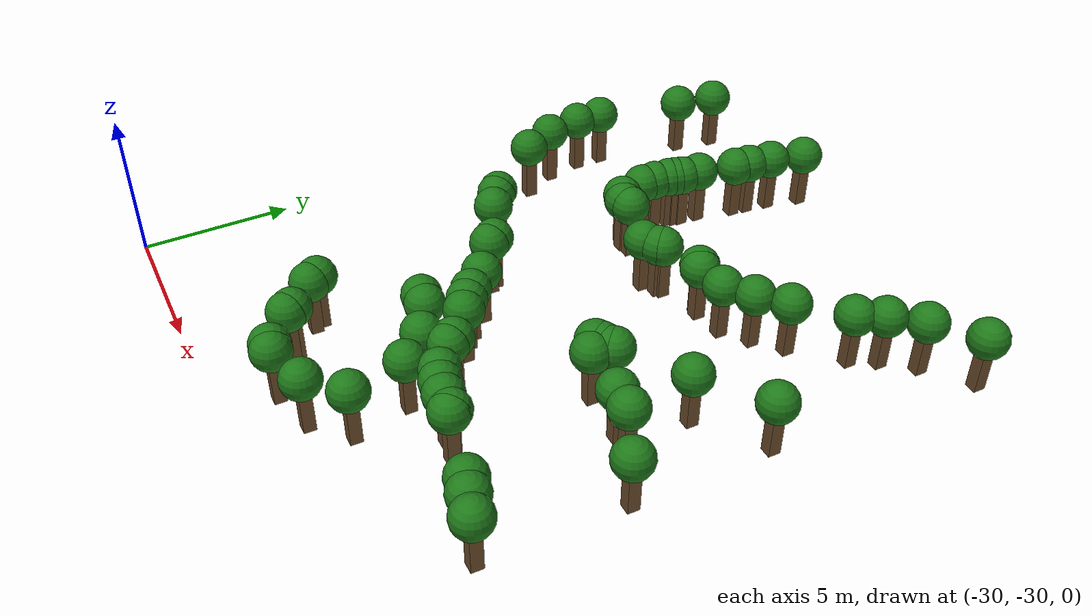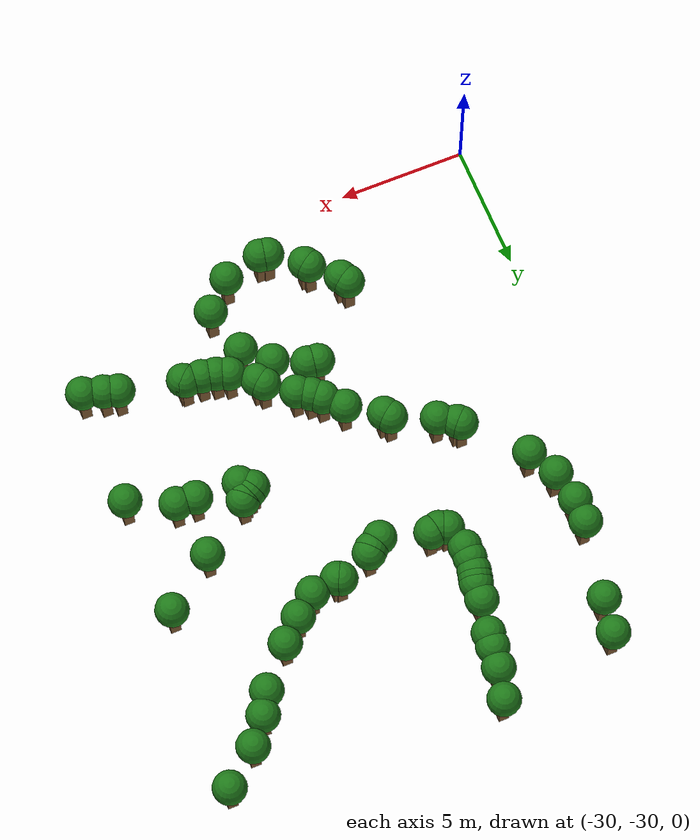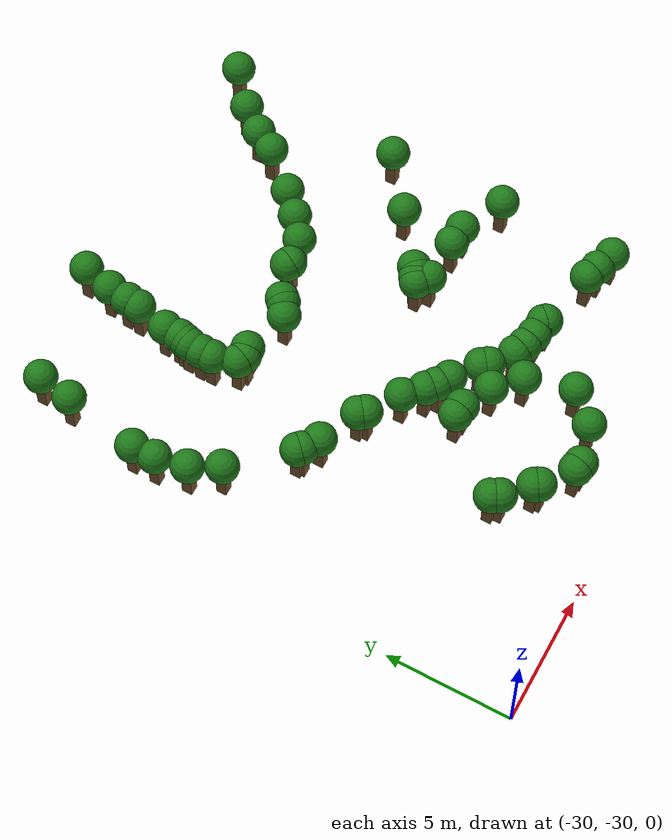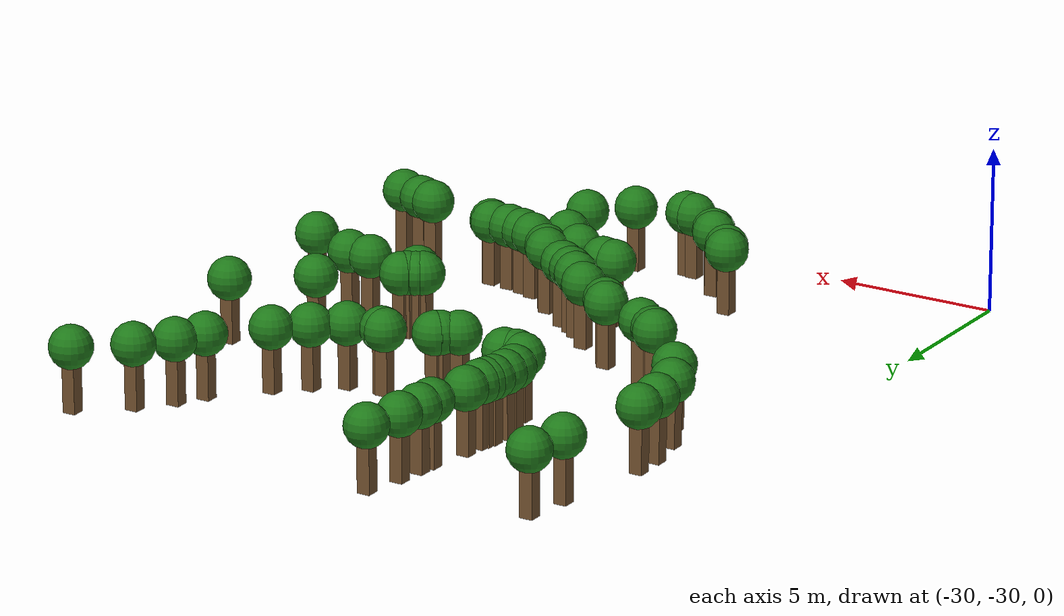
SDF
<sdf version="1.8">
 <model name="bush_trail_nav_walls">
  <static>true</static>
  <link name="trail_wall_305">
   <pose>-22.375 -8.299 0.750 0 0 0</pose>
   <collision name="c"><geometry><box><size>0.400 0.400 1.500</size></box></geometry></collision>
   <visual name="v">
    <geometry><box><size>0.400 0.400 1.500</size></box></geometry>
    <material><ambient>0.35 0.25 0.15 1</ambient><diffuse>0.45 0.32 0.18 1</diffuse></material>
   </visual>
   <visual name="leaves">
    <pose>0 0 1.200 0 0 0</pose>
    <geometry><sphere><radius>0.650</radius></sphere></geometry>
    <material><ambient>0.08 0.35 0.08 1</ambient><diffuse>0.12 0.48 0.10 1</diffuse></material>
   </visual>
  </link>
  <link name="trail_wall_313">
   <pose>-11.994 -9.003 0.750 0 0 0</pose>
   <collision name="c"><geometry><box><size>0.400 0.400 1.500</size></box></geometry></collision>
   <visual name="v">
    <geometry><box><size>0.400 0.400 1.500</size></box></geometry>
    <material><ambient>0.35 0.25 0.15 1</ambient><diffuse>0.45 0.32 0.18 1</diffuse></material>
   </visual>
   <visual name="leaves">
    <pose>0 0 1.200 0 0 0</pose>
    <geometry><sphere><radius>0.650</radius></sphere></geometry>
    <material><ambient>0.08 0.35 0.08 1</ambient><diffuse>0.12 0.48 0.10 1</diffuse></material>
   </visual>
  </link>
  <link name="trail_wall_314">
   <pose>-27.067 -9.120 0.750 0 0 0</pose>
   <collision name="c"><geometry><box><size>0.400 0.400 1.500</size></box></geometry></collision>
   <visual name="v">
    <geometry><box><size>0.400 0.400 1.500</size></box></geometry>
    <material><ambient>0.35 0.25 0.15 1</ambient><diffuse>0.45 0.32 0.18 1</diffuse></material>
   </visual>
   <visual name="leaves">
    <pose>0 0 1.200 0 0 0</pose>
    <geometry><sphere><radius>0.650</radius></sphere></geometry>
    <material><ambient>0.08 0.35 0.08 1</ambient><diffuse>0.12 0.48 0.10 1</diffuse></material>
   </visual>
  </link>
  <link name="trail_wall_317">
   <pose>-22.669 -9.472 0.750 0 0 0</pose>
   <collision name="c"><geometry><box><size>0.400 0.400 1.500</size></box></geometry></collision>
   <visual name="v">
    <geometry><box><size>0.400 0.400 1.500</size></box></geometry>
    <material><ambient>0.35 0.25 0.15 1</ambient><diffuse>0.45 0.32 0.18 1</diffuse></material>
   </visual>
   <visual name="leaves">
    <pose>0 0 1.200 0 0 0</pose>
    <geometry><sphere><radius>0.650</radius></sphere></geometry>
    <material><ambient>0.08 0.35 0.08 1</ambient><diffuse>0.12 0.48 0.10 1</diffuse></material>
   </visual>
  </link>
  <link name="trail_wall_321">
   <pose>-13.343 -10.117 0.750 0 0 0</pose>
   <collision name="c"><geometry><box><size>0.400 0.400 1.500</size></box></geometry></collision>
   <visual name="v">
    <geometry><box><size>0.400 0.400 1.500</size></box></geometry>
    <material><ambient>0.35 0.25 0.15 1</ambient><diffuse>0.45 0.32 0.18 1</diffuse></material>
   </visual>
   <visual name="leaves">
    <pose>0 0 1.200 0 0 0</pose>
    <geometry><sphere><radius>0.650</radius></sphere></geometry>
    <material><ambient>0.08 0.35 0.08 1</ambient><diffuse>0.12 0.48 0.10 1</diffuse></material>
   </visual>
  </link>
  <link name="trail_wall_322">
   <pose>-22.786 -10.293 0.750 0 0 0</pose>
   <collision name="c"><geometry><box><size>0.400 0.400 1.500</size></box></geometry></collision>
   <visual name="v">
    <geometry><box><size>0.400 0.400 1.500</size></box></geometry>
    <material><ambient>0.35 0.25 0.15 1</ambient><diffuse>0.45 0.32 0.18 1</diffuse></material>
   </visual>
   <visual name="leaves">
    <pose>0 0 1.200 0 0 0</pose>
    <geometry><sphere><radius>0.650</radius></sphere></geometry>
    <material><ambient>0.08 0.35 0.08 1</ambient><diffuse>0.12 0.48 0.10 1</diffuse></material>
   </visual>
  </link>
  <link name="trail_wall_323">
   <pose>-27.302 -10.469 0.750 0 0 0</pose>
   <collision name="c"><geometry><box><size>0.400 0.400 1.500</size></box></geometry></collision>
   <visual name="v">
    <geometry><box><size>0.400 0.400 1.500</size></box></geometry>
    <material><ambient>0.35 0.25 0.15 1</ambient><diffuse>0.45 0.32 0.18 1</diffuse></material>
   </visual>
   <visual name="leaves">
    <pose>0 0 1.200 0 0 0</pose>
    <geometry><sphere><radius>0.650</radius></sphere></geometry>
    <material><ambient>0.08 0.35 0.08 1</ambient><diffuse>0.12 0.48 0.10 1</diffuse></material>
   </visual>
  </link>
  <link name="trail_wall_326">
   <pose>-22.845 -10.821 0.750 0 0 0</pose>
   <collision name="c"><geometry><box><size>0.400 0.400 1.500</size></box></geometry></collision>
   <visual name="v">
    <geometry><box><size>0.400 0.400 1.500</size></box></geometry>
    <material><ambient>0.35 0.25 0.15 1</ambient><diffuse>0.45 0.32 0.18 1</diffuse></material>
   </visual>
   <visual name="leaves">
    <pose>0 0 1.200 0 0 0</pose>
    <geometry><sphere><radius>0.650</radius></sphere></geometry>
    <material><ambient>0.08 0.35 0.08 1</ambient><diffuse>0.12 0.48 0.10 1</diffuse></material>
   </visual>
  </link>
  <link name="trail_wall_329">
   <pose>-14.106 -11.056 0.750 0 0 0</pose>
   <collision name="c"><geometry><box><size>0.400 0.400 1.500</size></box></geometry></collision>
   <visual name="v">
    <geometry><box><size>0.400 0.400 1.500</size></box></geometry>
    <material><ambient>0.35 0.25 0.15 1</ambient><diffuse>0.45 0.32 0.18 1</diffuse></material>
   </visual>
   <visual name="leaves">
    <pose>0 0 1.200 0 0 0</pose>
    <geometry><sphere><radius>0.650</radius></sphere></geometry>
    <material><ambient>0.08 0.35 0.08 1</ambient><diffuse>0.12 0.48 0.10 1</diffuse></material>
   </visual>
  </link>
  <link name="trail_wall_338">
   <pose>-14.575 -11.877 0.750 0 0 0</pose>
   <collision name="c"><geometry><box><size>0.400 0.400 1.500</size></box></geometry></collision>
   <visual name="v">
    <geometry><box><size>0.400 0.400 1.500</size></box></geometry>
    <material><ambient>0.35 0.25 0.15 1</ambient><diffuse>0.45 0.32 0.18 1</diffuse></material>
   </visual>
   <visual name="leaves">
    <pose>0 0 1.200 0 0 0</pose>
    <geometry><sphere><radius>0.650</radius></sphere></geometry>
    <material><ambient>0.08 0.35 0.08 1</ambient><diffuse>0.12 0.48 0.10 1</diffuse></material>
   </visual>
  </link>
  <link name="trail_wall_340">
   <pose>-23.138 -12.111 0.750 0 0 0</pose>
   <collision name="c"><geometry><box><size>0.400 0.400 1.500</size></box></geometry></collision>
   <visual name="v">
    <geometry><box><size>0.400 0.400 1.500</size></box></geometry>
    <material><ambient>0.35 0.25 0.15 1</ambient><diffuse>0.45 0.32 0.18 1</diffuse></material>
   </visual>
   <visual name="leaves">
    <pose>0 0 1.200 0 0 0</pose>
    <geometry><sphere><radius>0.650</radius></sphere></geometry>
    <material><ambient>0.08 0.35 0.08 1</ambient><diffuse>0.12 0.48 0.10 1</diffuse></material>
   </visual>
  </link>
  <link name="trail_wall_348">
   <pose>-23.196 -12.757 0.750 0 0 0</pose>
   <collision name="c"><geometry><box><size>0.400 0.400 1.500</size></box></geometry></collision>
   <visual name="v">
    <geometry><box><size>0.400 0.400 1.500</size></box></geometry>
    <material><ambient>0.35 0.25 0.15 1</ambient><diffuse>0.45 0.32 0.18 1</diffuse></material>
   </visual>
   <visual name="leaves">
    <pose>0 0 1.200 0 0 0</pose>
    <geometry><sphere><radius>0.650</radius></sphere></geometry>
    <material><ambient>0.08 0.35 0.08 1</ambient><diffuse>0.12 0.48 0.10 1</diffuse></material>
   </visual>
  </link>
  <link name="trail_wall_351">
   <pose>-23.255 -12.991 0.750 0 0 0</pose>
   <collision name="c"><geometry><box><size>0.400 0.400 1.500</size></box></geometry></collision>
   <visual name="v">
    <geometry><box><size>0.400 0.400 1.500</size></box></geometry>
    <material><ambient>0.35 0.25 0.15 1</ambient><diffuse>0.45 0.32 0.18 1</diffuse></material>
   </visual>
   <visual name="leaves">
    <pose>0 0 1.200 0 0 0</pose>
    <geometry><sphere><radius>0.650</radius></sphere></geometry>
    <material><ambient>0.08 0.35 0.08 1</ambient><diffuse>0.12 0.48 0.10 1</diffuse></material>
   </visual>
  </link>
  <link name="trail_wall_354">
   <pose>-23.314 -13.226 0.750 0 0 0</pose>
   <collision name="c"><geometry><box><size>0.400 0.400 1.500</size></box></geometry></collision>
   <visual name="v">
    <geometry><box><size>0.400 0.400 1.500</size></box></geometry>
    <material><ambient>0.35 0.25 0.15 1</ambient><diffuse>0.45 0.32 0.18 1</diffuse></material>
   </visual>
   <visual name="leaves">
    <pose>0 0 1.200 0 0 0</pose>
    <geometry><sphere><radius>0.650</radius></sphere></geometry>
    <material><ambient>0.08 0.35 0.08 1</ambient><diffuse>0.12 0.48 0.10 1</diffuse></material>
   </visual>
  </link>
  <link name="trail_wall_355">
   <pose>-15.865 -13.284 0.750 0 0 0</pose>
   <collision name="c"><geometry><box><size>0.400 0.400 1.500</size></box></geometry></collision>
   <visual name="v">
    <geometry><box><size>0.400 0.400 1.500</size></box></geometry>
    <material><ambient>0.35 0.25 0.15 1</ambient><diffuse>0.45 0.32 0.18 1</diffuse></material>
   </visual>
   <visual name="leaves">
    <pose>0 0 1.200 0 0 0</pose>
    <geometry><sphere><radius>0.650</radius></sphere></geometry>
    <material><ambient>0.08 0.35 0.08 1</ambient><diffuse>0.12 0.48 0.10 1</diffuse></material>
   </visual>
  </link>
  <link name="trail_wall_358">
   <pose>-27.889 -13.460 0.750 0 0 0</pose>
   <collision name="c"><geometry><box><size>0.400 0.400 1.500</size></box></geometry></collision>
   <visual name="v">
    <geometry><box><size>0.400 0.400 1.500</size></box></geometry>
    <material><ambient>0.35 0.25 0.15 1</ambient><diffuse>0.45 0.32 0.18 1</diffuse></material>
   </visual>
   <visual name="leaves">
    <pose>0 0 1.200 0 0 0</pose>
    <geometry><sphere><radius>0.650</radius></sphere></geometry>
    <material><ambient>0.08 0.35 0.08 1</ambient><diffuse>0.12 0.48 0.10 1</diffuse></material>
   </visual>
  </link>
  <link name="trail_wall_360">
   <pose>-23.372 -13.754 0.750 0 0 0</pose>
   <collision name="c"><geometry><box><size>0.400 0.400 1.500</size></box></geometry></collision>
   <visual name="v">
    <geometry><box><size>0.400 0.400 1.500</size></box></geometry>
    <material><ambient>0.35 0.25 0.15 1</ambient><diffuse>0.45 0.32 0.18 1</diffuse></material>
   </visual>
   <visual name="leaves">
    <pose>0 0 1.200 0 0 0</pose>
    <geometry><sphere><radius>0.650</radius></sphere></geometry>
    <material><ambient>0.08 0.35 0.08 1</ambient><diffuse>0.12 0.48 0.10 1</diffuse></material>
   </visual>
  </link>
  <link name="trail_wall_362">
   <pose>-16.686 -14.047 0.750 0 0 0</pose>
   <collision name="c"><geometry><box><size>0.400 0.400 1.500</size></box></geometry></collision>
   <visual name="v">
    <geometry><box><size>0.400 0.400 1.500</size></box></geometry>
    <material><ambient>0.35 0.25 0.15 1</ambient><diffuse>0.45 0.32 0.18 1</diffuse></material>
   </visual>
   <visual name="leaves">
    <pose>0 0 1.200 0 0 0</pose>
    <geometry><sphere><radius>0.650</radius></sphere></geometry>
    <material><ambient>0.08 0.35 0.08 1</ambient><diffuse>0.12 0.48 0.10 1</diffuse></material>
   </visual>
  </link>
  <link name="trail_wall_363">
   <pose>-23.372 -14.223 0.750 0 0 0</pose>
   <collision name="c"><geometry><box><size>0.400 0.400 1.500</size></box></geometry></collision>
   <visual name="v">
    <geometry><box><size>0.400 0.400 1.500</size></box></geometry>
    <material><ambient>0.35 0.25 0.15 1</ambient><diffuse>0.45 0.32 0.18 1</diffuse></material>
   </visual>
   <visual name="leaves">
    <pose>0 0 1.200 0 0 0</pose>
    <geometry><sphere><radius>0.650</radius></sphere></geometry>
    <material><ambient>0.08 0.35 0.08 1</ambient><diffuse>0.12 0.48 0.10 1</diffuse></material>
   </visual>
  </link>
  <link name="trail_wall_364">
   <pose>-27.889 -14.399 0.750 0 0 0</pose>
   <collision name="c"><geometry><box><size>0.400 0.400 1.500</size></box></geometry></collision>
   <visual name="v">
    <geometry><box><size>0.400 0.400 1.500</size></box></geometry>
    <material><ambient>0.35 0.25 0.15 1</ambient><diffuse>0.45 0.32 0.18 1</diffuse></material>
   </visual>
   <visual name="leaves">
    <pose>0 0 1.200 0 0 0</pose>
    <geometry><sphere><radius>0.650</radius></sphere></geometry>
    <material><ambient>0.08 0.35 0.08 1</ambient><diffuse>0.12 0.48 0.10 1</diffuse></material>
   </visual>
  </link>
  <link name="trail_wall_366">
   <pose>-17.507 -14.692 0.750 0 0 0</pose>
   <collision name="c"><geometry><box><size>0.400 0.400 1.500</size></box></geometry></collision>
   <visual name="v">
    <geometry><box><size>0.400 0.400 1.500</size></box></geometry>
    <material><ambient>0.35 0.25 0.15 1</ambient><diffuse>0.45 0.32 0.18 1</diffuse></material>
   </visual>
   <visual name="leaves">
    <pose>0 0 1.200 0 0 0</pose>
    <geometry><sphere><radius>0.650</radius></sphere></geometry>
    <material><ambient>0.08 0.35 0.08 1</ambient><diffuse>0.12 0.48 0.10 1</diffuse></material>
   </visual>
  </link>
  <link name="trail_wall_367">
   <pose>-18.680 -14.809 0.750 0 0 0</pose>
   <collision name="c"><geometry><box><size>0.400 0.400 1.500</size></box></geometry></collision>
   <visual name="v">
    <geometry><box><size>0.400 0.400 1.500</size></box></geometry>
    <material><ambient>0.35 0.25 0.15 1</ambient><diffuse>0.45 0.32 0.18 1</diffuse></material>
   </visual>
   <visual name="leaves">
    <pose>0 0 1.200 0 0 0</pose>
    <geometry><sphere><radius>0.650</radius></sphere></geometry>
    <material><ambient>0.08 0.35 0.08 1</ambient><diffuse>0.12 0.48 0.10 1</diffuse></material>
   </visual>
  </link>
  <link name="trail_wall_368">
   <pose>-18.563 -14.868 0.750 0 0 0</pose>
   <collision name="c"><geometry><box><size>0.400 0.400 1.500</size></box></geometry></collision>
   <visual name="v">
    <geometry><box><size>0.400 0.400 1.500</size></box></geometry>
    <material><ambient>0.35 0.25 0.15 1</ambient><diffuse>0.45 0.32 0.18 1</diffuse></material>
   </visual>
   <visual name="leaves">
    <pose>0 0 1.200 0 0 0</pose>
    <geometry><sphere><radius>0.650</radius></sphere></geometry>
    <material><ambient>0.08 0.35 0.08 1</ambient><diffuse>0.12 0.48 0.10 1</diffuse></material>
   </visual>
  </link>
  <link name="trail_wall_371">
   <pose>-23.079 -15.161 0.750 0 0 0</pose>
   <collision name="c"><geometry><box><size>0.400 0.400 1.500</size></box></geometry></collision>
   <visual name="v">
    <geometry><box><size>0.400 0.400 1.500</size></box></geometry>
    <material><ambient>0.35 0.25 0.15 1</ambient><diffuse>0.45 0.32 0.18 1</diffuse></material>
   </visual>
   <visual name="leaves">
    <pose>0 0 1.200 0 0 0</pose>
    <geometry><sphere><radius>0.650</radius></sphere></geometry>
    <material><ambient>0.08 0.35 0.08 1</ambient><diffuse>0.12 0.48 0.10 1</diffuse></material>
   </visual>
  </link>
  <link name="trail_wall_372">
   <pose>-22.434 -15.220 0.750 0 0 0</pose>
   <collision name="c"><geometry><box><size>0.400 0.400 1.500</size></box></geometry></collision>
   <visual name="v">
    <geometry><box><size>0.400 0.400 1.500</size></box></geometry>
    <material><ambient>0.35 0.25 0.15 1</ambient><diffuse>0.45 0.32 0.18 1</diffuse></material>
   </visual>
   <visual name="leaves">
    <pose>0 0 1.200 0 0 0</pose>
    <geometry><sphere><radius>0.650</radius></sphere></geometry>
    <material><ambient>0.08 0.35 0.08 1</ambient><diffuse>0.12 0.48 0.10 1</diffuse></material>
   </visual>
  </link>
  <link name="trail_wall_373">
   <pose>-22.786 -15.279 0.750 0 0 0</pose>
   <collision name="c"><geometry><box><size>0.400 0.400 1.500</size></box></geometry></collision>
   <visual name="v">
    <geometry><box><size>0.400 0.400 1.500</size></box></geometry>
    <material><ambient>0.35 0.25 0.15 1</ambient><diffuse>0.45 0.32 0.18 1</diffuse></material>
   </visual>
   <visual name="leaves">
    <pose>0 0 1.200 0 0 0</pose>
    <geometry><sphere><radius>0.650</radius></sphere></geometry>
    <material><ambient>0.08 0.35 0.08 1</ambient><diffuse>0.12 0.48 0.10 1</diffuse></material>
   </visual>
  </link>
  <link name="trail_wall_374">
   <pose>-20.029 -15.337 0.750 0 0 0</pose>
   <collision name="c"><geometry><box><size>0.400 0.400 1.500</size></box></geometry></collision>
   <visual name="v">
    <geometry><box><size>0.400 0.400 1.500</size></box></geometry>
    <material><ambient>0.35 0.25 0.15 1</ambient><diffuse>0.45 0.32 0.18 1</diffuse></material>
   </visual>
   <visual name="leaves">
    <pose>0 0 1.200 0 0 0</pose>
    <geometry><sphere><radius>0.650</radius></sphere></geometry>
    <material><ambient>0.08 0.35 0.08 1</ambient><diffuse>0.12 0.48 0.10 1</diffuse></material>
   </visual>
  </link>
  <link name="trail_wall_375">
   <pose>-20.147 -15.455 0.750 0 0 0</pose>
   <collision name="c"><geometry><box><size>0.400 0.400 1.500</size></box></geometry></collision>
   <visual name="v">
    <geometry><box><size>0.400 0.400 1.500</size></box></geometry>
    <material><ambient>0.35 0.25 0.15 1</ambient><diffuse>0.45 0.32 0.18 1</diffuse></material>
   </visual>
   <visual name="leaves">
    <pose>0 0 1.200 0 0 0</pose>
    <geometry><sphere><radius>0.650</radius></sphere></geometry>
    <material><ambient>0.08 0.35 0.08 1</ambient><diffuse>0.12 0.48 0.10 1</diffuse></material>
   </visual>
  </link>
  <link name="trail_wall_376">
   <pose>-27.654 -15.630 0.750 0 0 0</pose>
   <collision name="c"><geometry><box><size>0.400 0.400 1.500</size></box></geometry></collision>
   <visual name="v">
    <geometry><box><size>0.400 0.400 1.500</size></box></geometry>
    <material><ambient>0.35 0.25 0.15 1</ambient><diffuse>0.45 0.32 0.18 1</diffuse></material>
   </visual>
   <visual name="leaves">
    <pose>0 0 1.200 0 0 0</pose>
    <geometry><sphere><radius>0.650</radius></sphere></geometry>
    <material><ambient>0.08 0.35 0.08 1</ambient><diffuse>0.12 0.48 0.10 1</diffuse></material>
   </visual>
  </link>
  <link name="trail_wall_377">
   <pose>-20.616 -15.748 0.750 0 0 0</pose>
   <collision name="c"><geometry><box><size>0.400 0.400 1.500</size></box></geometry></collision>
   <visual name="v">
    <geometry><box><size>0.400 0.400 1.500</size></box></geometry>
    <material><ambient>0.35 0.25 0.15 1</ambient><diffuse>0.45 0.32 0.18 1</diffuse></material>
   </visual>
   <visual name="leaves">
    <pose>0 0 1.200 0 0 0</pose>
    <geometry><sphere><radius>0.650</radius></sphere></geometry>
    <material><ambient>0.08 0.35 0.08 1</ambient><diffuse>0.12 0.48 0.10 1</diffuse></material>
   </visual>
  </link>
  <link name="trail_wall_379">
   <pose>-12.522 -16.041 0.750 0 0 0</pose>
   <collision name="c"><geometry><box><size>0.400 0.400 1.500</size></box></geometry></collision>
   <visual name="v">
    <geometry><box><size>0.400 0.400 1.500</size></box></geometry>
    <material><ambient>0.35 0.25 0.15 1</ambient><diffuse>0.45 0.32 0.18 1</diffuse></material>
   </visual>
   <visual name="leaves">
    <pose>0 0 1.200 0 0 0</pose>
    <geometry><sphere><radius>0.650</radius></sphere></geometry>
    <material><ambient>0.08 0.35 0.08 1</ambient><diffuse>0.12 0.48 0.10 1</diffuse></material>
   </visual>
  </link>
  <link name="trail_wall_384">
   <pose>-27.067 -16.745 0.750 0 0 0</pose>
   <collision name="c"><geometry><box><size>0.400 0.400 1.500</size></box></geometry></collision>
   <visual name="v">
    <geometry><box><size>0.400 0.400 1.500</size></box></geometry>
    <material><ambient>0.35 0.25 0.15 1</ambient><diffuse>0.45 0.32 0.18 1</diffuse></material>
   </visual>
   <visual name="leaves">
    <pose>0 0 1.200 0 0 0</pose>
    <geometry><sphere><radius>0.650</radius></sphere></geometry>
    <material><ambient>0.08 0.35 0.08 1</ambient><diffuse>0.12 0.48 0.10 1</diffuse></material>
   </visual>
  </link>
  <link name="trail_wall_389">
   <pose>-14.516 -17.566 0.750 0 0 0</pose>
   <collision name="c"><geometry><box><size>0.400 0.400 1.500</size></box></geometry></collision>
   <visual name="v">
    <geometry><box><size>0.400 0.400 1.500</size></box></geometry>
    <material><ambient>0.35 0.25 0.15 1</ambient><diffuse>0.45 0.32 0.18 1</diffuse></material>
   </visual>
   <visual name="leaves">
    <pose>0 0 1.200 0 0 0</pose>
    <geometry><sphere><radius>0.650</radius></sphere></geometry>
    <material><ambient>0.08 0.35 0.08 1</ambient><diffuse>0.12 0.48 0.10 1</diffuse></material>
   </visual>
  </link>
  <link name="trail_wall_397">
   <pose>-25.191 -18.798 0.750 0 0 0</pose>
   <collision name="c"><geometry><box><size>0.400 0.400 1.500</size></box></geometry></collision>
   <visual name="v">
    <geometry><box><size>0.400 0.400 1.500</size></box></geometry>
    <material><ambient>0.35 0.25 0.15 1</ambient><diffuse>0.45 0.32 0.18 1</diffuse></material>
   </visual>
   <visual name="leaves">
    <pose>0 0 1.200 0 0 0</pose>
    <geometry><sphere><radius>0.650</radius></sphere></geometry>
    <material><ambient>0.08 0.35 0.08 1</ambient><diffuse>0.12 0.48 0.10 1</diffuse></material>
   </visual>
  </link>
  <link name="trail_wall_398">
   <pose>-25.073 -18.915 0.750 0 0 0</pose>
   <collision name="c"><geometry><box><size>0.400 0.400 1.500</size></box></geometry></collision>
   <visual name="v">
    <geometry><box><size>0.400 0.400 1.500</size></box></geometry>
    <material><ambient>0.35 0.25 0.15 1</ambient><diffuse>0.45 0.32 0.18 1</diffuse></material>
   </visual>
   <visual name="leaves">
    <pose>0 0 1.200 0 0 0</pose>
    <geometry><sphere><radius>0.650</radius></sphere></geometry>
    <material><ambient>0.08 0.35 0.08 1</ambient><diffuse>0.12 0.48 0.10 1</diffuse></material>
   </visual>
  </link>
  <link name="trail_wall_399">
   <pose>-16.510 -19.032 0.750 0 0 0</pose>
   <collision name="c"><geometry><box><size>0.400 0.400 1.500</size></box></geometry></collision>
   <visual name="v">
    <geometry><box><size>0.400 0.400 1.500</size></box></geometry>
    <material><ambient>0.35 0.25 0.15 1</ambient><diffuse>0.45 0.32 0.18 1</diffuse></material>
   </visual>
   <visual name="leaves">
    <pose>0 0 1.200 0 0 0</pose>
    <geometry><sphere><radius>0.650</radius></sphere></geometry>
    <material><ambient>0.08 0.35 0.08 1</ambient><diffuse>0.12 0.48 0.10 1</diffuse></material>
   </visual>
  </link>
  <link name="trail_wall_400">
   <pose>-16.628 -19.150 0.750 0 0 0</pose>
   <collision name="c"><geometry><box><size>0.400 0.400 1.500</size></box></geometry></collision>
   <visual name="v">
    <geometry><box><size>0.400 0.400 1.500</size></box></geometry>
    <material><ambient>0.35 0.25 0.15 1</ambient><diffuse>0.45 0.32 0.18 1</diffuse></material>
   </visual>
   <visual name="leaves">
    <pose>0 0 1.200 0 0 0</pose>
    <geometry><sphere><radius>0.650</radius></sphere></geometry>
    <material><ambient>0.08 0.35 0.08 1</ambient><diffuse>0.12 0.48 0.10 1</diffuse></material>
   </visual>
  </link>
  <link name="trail_wall_402">
   <pose>-16.862 -19.267 0.750 0 0 0</pose>
   <collision name="c"><geometry><box><size>0.400 0.400 1.500</size></box></geometry></collision>
   <visual name="v">
    <geometry><box><size>0.400 0.400 1.500</size></box></geometry>
    <material><ambient>0.35 0.25 0.15 1</ambient><diffuse>0.45 0.32 0.18 1</diffuse></material>
   </visual>
   <visual name="leaves">
    <pose>0 0 1.200 0 0 0</pose>
    <geometry><sphere><radius>0.650</radius></sphere></geometry>
    <material><ambient>0.08 0.35 0.08 1</ambient><diffuse>0.12 0.48 0.10 1</diffuse></material>
   </visual>
  </link>
  <link name="trail_wall_403">
   <pose>-24.428 -19.326 0.750 0 0 0</pose>
   <collision name="c"><geometry><box><size>0.400 0.400 1.500</size></box></geometry></collision>
   <visual name="v">
    <geometry><box><size>0.400 0.400 1.500</size></box></geometry>
    <material><ambient>0.35 0.25 0.15 1</ambient><diffuse>0.45 0.32 0.18 1</diffuse></material>
   </visual>
   <visual name="leaves">
    <pose>0 0 1.200 0 0 0</pose>
    <geometry><sphere><radius>0.650</radius></sphere></geometry>
    <material><ambient>0.08 0.35 0.08 1</ambient><diffuse>0.12 0.48 0.10 1</diffuse></material>
   </visual>
  </link>
  <link name="trail_wall_404">
   <pose>-17.038 -19.384 0.750 0 0 0</pose>
   <collision name="c"><geometry><box><size>0.400 0.400 1.500</size></box></geometry></collision>
   <visual name="v">
    <geometry><box><size>0.400 0.400 1.500</size></box></geometry>
    <material><ambient>0.35 0.25 0.15 1</ambient><diffuse>0.45 0.32 0.18 1</diffuse></material>
   </visual>
   <visual name="leaves">
    <pose>0 0 1.200 0 0 0</pose>
    <geometry><sphere><radius>0.650</radius></sphere></geometry>
    <material><ambient>0.08 0.35 0.08 1</ambient><diffuse>0.12 0.48 0.10 1</diffuse></material>
   </visual>
  </link>
  <link name="trail_wall_407">
   <pose>-16.628 -19.736 0.750 0 0 0</pose>
   <collision name="c"><geometry><box><size>0.400 0.400 1.500</size></box></geometry></collision>
   <visual name="v">
    <geometry><box><size>0.400 0.400 1.500</size></box></geometry>
    <material><ambient>0.35 0.25 0.15 1</ambient><diffuse>0.45 0.32 0.18 1</diffuse></material>
   </visual>
   <visual name="leaves">
    <pose>0 0 1.200 0 0 0</pose>
    <geometry><sphere><radius>0.650</radius></sphere></geometry>
    <material><ambient>0.08 0.35 0.08 1</ambient><diffuse>0.12 0.48 0.10 1</diffuse></material>
   </visual>
  </link>
  <link name="trail_wall_409">
   <pose>-14.927 -19.795 0.750 0 0 0</pose>
   <collision name="c"><geometry><box><size>0.400 0.400 1.500</size></box></geometry></collision>
   <visual name="v">
    <geometry><box><size>0.400 0.400 1.500</size></box></geometry>
    <material><ambient>0.35 0.25 0.15 1</ambient><diffuse>0.45 0.32 0.18 1</diffuse></material>
   </visual>
   <visual name="leaves">
    <pose>0 0 1.200 0 0 0</pose>
    <geometry><sphere><radius>0.650</radius></sphere></geometry>
    <material><ambient>0.08 0.35 0.08 1</ambient><diffuse>0.12 0.48 0.10 1</diffuse></material>
   </visual>
  </link>
  <link name="trail_wall_410">
   <pose>-14.164 -19.853 0.750 0 0 0</pose>
   <collision name="c"><geometry><box><size>0.400 0.400 1.500</size></box></geometry></collision>
   <visual name="v">
    <geometry><box><size>0.400 0.400 1.500</size></box></geometry>
    <material><ambient>0.35 0.25 0.15 1</ambient><diffuse>0.45 0.32 0.18 1</diffuse></material>
   </visual>
   <visual name="leaves">
    <pose>0 0 1.200 0 0 0</pose>
    <geometry><sphere><radius>0.650</radius></sphere></geometry>
    <material><ambient>0.08 0.35 0.08 1</ambient><diffuse>0.12 0.48 0.10 1</diffuse></material>
   </visual>
  </link>
  <link name="trail_wall_412">
   <pose>-22.845 -20.029 0.750 0 0 0</pose>
   <collision name="c"><geometry><box><size>0.400 0.400 1.500</size></box></geometry></collision>
   <visual name="v">
    <geometry><box><size>0.400 0.400 1.500</size></box></geometry>
    <material><ambient>0.35 0.25 0.15 1</ambient><diffuse>0.45 0.32 0.18 1</diffuse></material>
   </visual>
   <visual name="leaves">
    <pose>0 0 1.200 0 0 0</pose>
    <geometry><sphere><radius>0.650</radius></sphere></geometry>
    <material><ambient>0.08 0.35 0.08 1</ambient><diffuse>0.12 0.48 0.10 1</diffuse></material>
   </visual>
  </link>
  <link name="trail_wall_414">
   <pose>-22.669 -20.264 0.750 0 0 0</pose>
   <collision name="c"><geometry><box><size>0.400 0.400 1.500</size></box></geometry></collision>
   <visual name="v">
    <geometry><box><size>0.400 0.400 1.500</size></box></geometry>
    <material><ambient>0.35 0.25 0.15 1</ambient><diffuse>0.45 0.32 0.18 1</diffuse></material>
   </visual>
   <visual name="leaves">
    <pose>0 0 1.200 0 0 0</pose>
    <geometry><sphere><radius>0.650</radius></sphere></geometry>
    <material><ambient>0.08 0.35 0.08 1</ambient><diffuse>0.12 0.48 0.10 1</diffuse></material>
   </visual>
  </link>
  <link name="trail_wall_418">
   <pose>-12.463 -20.674 0.750 0 0 0</pose>
   <collision name="c"><geometry><box><size>0.400 0.400 1.500</size></box></geometry></collision>
   <visual name="v">
    <geometry><box><size>0.400 0.400 1.500</size></box></geometry>
    <material><ambient>0.35 0.25 0.15 1</ambient><diffuse>0.45 0.32 0.18 1</diffuse></material>
   </visual>
   <visual name="leaves">
    <pose>0 0 1.200 0 0 0</pose>
    <geometry><sphere><radius>0.650</radius></sphere></geometry>
    <material><ambient>0.08 0.35 0.08 1</ambient><diffuse>0.12 0.48 0.10 1</diffuse></material>
   </visual>
  </link>
  <link name="trail_wall_432">
   <pose>-21.437 -21.085 0.750 0 0 0</pose>
   <collision name="c"><geometry><box><size>0.400 0.400 1.500</size></box></geometry></collision>
   <visual name="v">
    <geometry><box><size>0.400 0.400 1.500</size></box></geometry>
    <material><ambient>0.35 0.25 0.15 1</ambient><diffuse>0.45 0.32 0.18 1</diffuse></material>
   </visual>
   <visual name="leaves">
    <pose>0 0 1.200 0 0 0</pose>
    <geometry><sphere><radius>0.650</radius></sphere></geometry>
    <material><ambient>0.08 0.35 0.08 1</ambient><diffuse>0.12 0.48 0.10 1</diffuse></material>
   </visual>
  </link>
  <link name="trail_wall_437">
   <pose>-20.792 -21.730 0.750 0 0 0</pose>
   <collision name="c"><geometry><box><size>0.400 0.400 1.500</size></box></geometry></collision>
   <visual name="v">
    <geometry><box><size>0.400 0.400 1.500</size></box></geometry>
    <material><ambient>0.35 0.25 0.15 1</ambient><diffuse>0.45 0.32 0.18 1</diffuse></material>
   </visual>
   <visual name="leaves">
    <pose>0 0 1.200 0 0 0</pose>
    <geometry><sphere><radius>0.650</radius></sphere></geometry>
    <material><ambient>0.08 0.35 0.08 1</ambient><diffuse>0.12 0.48 0.10 1</diffuse></material>
   </visual>
  </link>
  <link name="trail_wall_439">
   <pose>-20.440 -22.023 0.750 0 0 0</pose>
   <collision name="c"><geometry><box><size>0.400 0.400 1.500</size></box></geometry></collision>
   <visual name="v">
    <geometry><box><size>0.400 0.400 1.500</size></box></geometry>
    <material><ambient>0.35 0.25 0.15 1</ambient><diffuse>0.45 0.32 0.18 1</diffuse></material>
   </visual>
   <visual name="leaves">
    <pose>0 0 1.200 0 0 0</pose>
    <geometry><sphere><radius>0.650</radius></sphere></geometry>
    <material><ambient>0.08 0.35 0.08 1</ambient><diffuse>0.12 0.48 0.10 1</diffuse></material>
   </visual>
  </link>
  <link name="trail_wall_441">
   <pose>-19.971 -22.317 0.750 0 0 0</pose>
   <collision name="c"><geometry><box><size>0.400 0.400 1.500</size></box></geometry></collision>
   <visual name="v">
    <geometry><box><size>0.400 0.400 1.500</size></box></geometry>
    <material><ambient>0.35 0.25 0.15 1</ambient><diffuse>0.45 0.32 0.18 1</diffuse></material>
   </visual>
   <visual name="leaves">
    <pose>0 0 1.200 0 0 0</pose>
    <geometry><sphere><radius>0.650</radius></sphere></geometry>
    <material><ambient>0.08 0.35 0.08 1</ambient><diffuse>0.12 0.48 0.10 1</diffuse></material>
   </visual>
  </link>
  <link name="trail_wall_449">
   <pose>-18.974 -23.079 0.750 0 0 0</pose>
   <collision name="c"><geometry><box><size>0.400 0.400 1.500</size></box></geometry></collision>
   <visual name="v">
    <geometry><box><size>0.400 0.400 1.500</size></box></geometry>
    <material><ambient>0.35 0.25 0.15 1</ambient><diffuse>0.45 0.32 0.18 1</diffuse></material>
   </visual>
   <visual name="leaves">
    <pose>0 0 1.200 0 0 0</pose>
    <geometry><sphere><radius>0.650</radius></sphere></geometry>
    <material><ambient>0.08 0.35 0.08 1</ambient><diffuse>0.12 0.48 0.10 1</diffuse></material>
   </visual>
  </link>
  <link name="trail_wall_450">
   <pose>-21.202 -23.196 0.750 0 0 0</pose>
   <collision name="c"><geometry><box><size>0.400 0.400 1.500</size></box></geometry></collision>
   <visual name="v">
    <geometry><box><size>0.400 0.400 1.500</size></box></geometry>
    <material><ambient>0.35 0.25 0.15 1</ambient><diffuse>0.45 0.32 0.18 1</diffuse></material>
   </visual>
   <visual name="leaves">
    <pose>0 0 1.200 0 0 0</pose>
    <geometry><sphere><radius>0.650</radius></sphere></geometry>
    <material><ambient>0.08 0.35 0.08 1</ambient><diffuse>0.12 0.48 0.10 1</diffuse></material>
   </visual>
  </link>
  <link name="trail_wall_451">
   <pose>-20.792 -23.255 0.750 0 0 0</pose>
   <collision name="c"><geometry><box><size>0.400 0.400 1.500</size></box></geometry></collision>
   <visual name="v">
    <geometry><box><size>0.400 0.400 1.500</size></box></geometry>
    <material><ambient>0.35 0.25 0.15 1</ambient><diffuse>0.45 0.32 0.18 1</diffuse></material>
   </visual>
   <visual name="leaves">
    <pose>0 0 1.200 0 0 0</pose>
    <geometry><sphere><radius>0.650</radius></sphere></geometry>
    <material><ambient>0.08 0.35 0.08 1</ambient><diffuse>0.12 0.48 0.10 1</diffuse></material>
   </visual>
  </link>
  <link name="trail_wall_452">
   <pose>-18.798 -23.314 0.750 0 0 0</pose>
   <collision name="c"><geometry><box><size>0.400 0.400 1.500</size></box></geometry></collision>
   <visual name="v">
    <geometry><box><size>0.400 0.400 1.500</size></box></geometry>
    <material><ambient>0.35 0.25 0.15 1</ambient><diffuse>0.45 0.32 0.18 1</diffuse></material>
   </visual>
   <visual name="leaves">
    <pose>0 0 1.200 0 0 0</pose>
    <geometry><sphere><radius>0.650</radius></sphere></geometry>
    <material><ambient>0.08 0.35 0.08 1</ambient><diffuse>0.12 0.48 0.10 1</diffuse></material>
   </visual>
  </link>
  <link name="trail_wall_459">
   <pose>-19.619 -23.842 0.750 0 0 0</pose>
   <collision name="c"><geometry><box><size>0.400 0.400 1.500</size></box></geometry></collision>
   <visual name="v">
    <geometry><box><size>0.400 0.400 1.500</size></box></geometry>
    <material><ambient>0.35 0.25 0.15 1</ambient><diffuse>0.45 0.32 0.18 1</diffuse></material>
   </visual>
   <visual name="leaves">
    <pose>0 0 1.200 0 0 0</pose>
    <geometry><sphere><radius>0.650</radius></sphere></geometry>
    <material><ambient>0.08 0.35 0.08 1</ambient><diffuse>0.12 0.48 0.10 1</diffuse></material>
   </visual>
  </link>
  <link name="trail_wall_460">
   <pose>-17.918 -23.959 0.750 0 0 0</pose>
   <collision name="c"><geometry><box><size>0.400 0.400 1.500</size></box></geometry></collision>
   <visual name="v">
    <geometry><box><size>0.400 0.400 1.500</size></box></geometry>
    <material><ambient>0.35 0.25 0.15 1</ambient><diffuse>0.45 0.32 0.18 1</diffuse></material>
   </visual>
   <visual name="leaves">
    <pose>0 0 1.200 0 0 0</pose>
    <geometry><sphere><radius>0.650</radius></sphere></geometry>
    <material><ambient>0.08 0.35 0.08 1</ambient><diffuse>0.12 0.48 0.10 1</diffuse></material>
   </visual>
  </link>
  <link name="trail_wall_461">
   <pose>-17.449 -24.135 0.750 0 0 0</pose>
   <collision name="c"><geometry><box><size>0.400 0.400 1.500</size></box></geometry></collision>
   <visual name="v">
    <geometry><box><size>0.400 0.400 1.500</size></box></geometry>
    <material><ambient>0.35 0.25 0.15 1</ambient><diffuse>0.45 0.32 0.18 1</diffuse></material>
   </visual>
   <visual name="leaves">
    <pose>0 0 1.200 0 0 0</pose>
    <geometry><sphere><radius>0.650</radius></sphere></geometry>
    <material><ambient>0.08 0.35 0.08 1</ambient><diffuse>0.12 0.48 0.10 1</diffuse></material>
   </visual>
  </link>
  <link name="trail_wall_462">
   <pose>-16.921 -24.252 0.750 0 0 0</pose>
   <collision name="c"><geometry><box><size>0.400 0.400 1.500</size></box></geometry></collision>
   <visual name="v">
    <geometry><box><size>0.400 0.400 1.500</size></box></geometry>
    <material><ambient>0.35 0.25 0.15 1</ambient><diffuse>0.45 0.32 0.18 1</diffuse></material>
   </visual>
   <visual name="leaves">
    <pose>0 0 1.200 0 0 0</pose>
    <geometry><sphere><radius>0.650</radius></sphere></geometry>
    <material><ambient>0.08 0.35 0.08 1</ambient><diffuse>0.12 0.48 0.10 1</diffuse></material>
   </visual>
  </link>
  <link name="trail_wall_463">
   <pose>-16.276 -24.311 0.750 0 0 0</pose>
   <collision name="c"><geometry><box><size>0.400 0.400 1.500</size></box></geometry></collision>
   <visual name="v">
    <geometry><box><size>0.400 0.400 1.500</size></box></geometry>
    <material><ambient>0.35 0.25 0.15 1</ambient><diffuse>0.45 0.32 0.18 1</diffuse></material>
   </visual>
   <visual name="leaves">
    <pose>0 0 1.200 0 0 0</pose>
    <geometry><sphere><radius>0.650</radius></sphere></geometry>
    <material><ambient>0.08 0.35 0.08 1</ambient><diffuse>0.12 0.48 0.10 1</diffuse></material>
   </visual>
  </link>
  <link name="trail_wall_464">
   <pose>-16.217 -24.370 0.750 0 0 0</pose>
   <collision name="c"><geometry><box><size>0.400 0.400 1.500</size></box></geometry></collision>
   <visual name="v">
    <geometry><box><size>0.400 0.400 1.500</size></box></geometry>
    <material><ambient>0.35 0.25 0.15 1</ambient><diffuse>0.45 0.32 0.18 1</diffuse></material>
   </visual>
   <visual name="leaves">
    <pose>0 0 1.200 0 0 0</pose>
    <geometry><sphere><radius>0.650</radius></sphere></geometry>
    <material><ambient>0.08 0.35 0.08 1</ambient><diffuse>0.12 0.48 0.10 1</diffuse></material>
   </visual>
  </link>
  <link name="trail_wall_466">
   <pose>-18.680 -24.721 0.750 0 0 0</pose>
   <collision name="c"><geometry><box><size>0.400 0.400 1.500</size></box></geometry></collision>
   <visual name="v">
    <geometry><box><size>0.400 0.400 1.500</size></box></geometry>
    <material><ambient>0.35 0.25 0.15 1</ambient><diffuse>0.45 0.32 0.18 1</diffuse></material>
   </visual>
   <visual name="leaves">
    <pose>0 0 1.200 0 0 0</pose>
    <geometry><sphere><radius>0.650</radius></sphere></geometry>
    <material><ambient>0.08 0.35 0.08 1</ambient><diffuse>0.12 0.48 0.10 1</diffuse></material>
   </visual>
  </link>
  <link name="trail_wall_467">
   <pose>-13.812 -24.897 0.750 0 0 0</pose>
   <collision name="c"><geometry><box><size>0.400 0.400 1.500</size></box></geometry></collision>
   <visual name="v">
    <geometry><box><size>0.400 0.400 1.500</size></box></geometry>
    <material><ambient>0.35 0.25 0.15 1</ambient><diffuse>0.45 0.32 0.18 1</diffuse></material>
   </visual>
   <visual name="leaves">
    <pose>0 0 1.200 0 0 0</pose>
    <geometry><sphere><radius>0.650</radius></sphere></geometry>
    <material><ambient>0.08 0.35 0.08 1</ambient><diffuse>0.12 0.48 0.10 1</diffuse></material>
   </visual>
  </link>
  <link name="trail_wall_468">
   <pose>-13.284 -25.073 0.750 0 0 0</pose>
   <collision name="c"><geometry><box><size>0.400 0.400 1.500</size></box></geometry></collision>
   <visual name="v">
    <geometry><box><size>0.400 0.400 1.500</size></box></geometry>
    <material><ambient>0.35 0.25 0.15 1</ambient><diffuse>0.45 0.32 0.18 1</diffuse></material>
   </visual>
   <visual name="leaves">
    <pose>0 0 1.200 0 0 0</pose>
    <geometry><sphere><radius>0.650</radius></sphere></geometry>
    <material><ambient>0.08 0.35 0.08 1</ambient><diffuse>0.12 0.48 0.10 1</diffuse></material>
   </visual>
  </link>
  <link name="trail_wall_471">
   <pose>-12.522 -25.308 0.750 0 0 0</pose>
   <collision name="c"><geometry><box><size>0.400 0.400 1.500</size></box></geometry></collision>
   <visual name="v">
    <geometry><box><size>0.400 0.400 1.500</size></box></geometry>
    <material><ambient>0.35 0.25 0.15 1</ambient><diffuse>0.45 0.32 0.18 1</diffuse></material>
   </visual>
   <visual name="leaves">
    <pose>0 0 1.200 0 0 0</pose>
    <geometry><sphere><radius>0.650</radius></sphere></geometry>
    <material><ambient>0.08 0.35 0.08 1</ambient><diffuse>0.12 0.48 0.10 1</diffuse></material>
   </visual>
  </link>
  <link name="trail_wall_484">
   <pose>-23.490 -25.777 0.750 0 0 0</pose>
   <collision name="c"><geometry><box><size>0.400 0.400 1.500</size></box></geometry></collision>
   <visual name="v">
    <geometry><box><size>0.400 0.400 1.500</size></box></geometry>
    <material><ambient>0.35 0.25 0.15 1</ambient><diffuse>0.45 0.32 0.18 1</diffuse></material>
   </visual>
   <visual name="leaves">
    <pose>0 0 1.200 0 0 0</pose>
    <geometry><sphere><radius>0.650</radius></sphere></geometry>
    <material><ambient>0.08 0.35 0.08 1</ambient><diffuse>0.12 0.48 0.10 1</diffuse></material>
   </visual>
  </link>
  <link name="trail_wall_489">
   <pose>-23.314 -26.070 0.750 0 0 0</pose>
   <collision name="c"><geometry><box><size>0.400 0.400 1.500</size></box></geometry></collision>
   <visual name="v">
    <geometry><box><size>0.400 0.400 1.500</size></box></geometry>
    <material><ambient>0.35 0.25 0.15 1</ambient><diffuse>0.45 0.32 0.18 1</diffuse></material>
   </visual>
   <visual name="leaves">
    <pose>0 0 1.200 0 0 0</pose>
    <geometry><sphere><radius>0.650</radius></sphere></geometry>
    <material><ambient>0.08 0.35 0.08 1</ambient><diffuse>0.12 0.48 0.10 1</diffuse></material>
   </visual>
  </link>
  <link name="trail_wall_492">
   <pose>-18.211 -26.598 0.750 0 0 0</pose>
   <collision name="c"><geometry><box><size>0.400 0.400 1.500</size></box></geometry></collision>
   <visual name="v">
    <geometry><box><size>0.400 0.400 1.500</size></box></geometry>
    <material><ambient>0.35 0.25 0.15 1</ambient><diffuse>0.45 0.32 0.18 1</diffuse></material>
   </visual>
   <visual name="leaves">
    <pose>0 0 1.200 0 0 0</pose>
    <geometry><sphere><radius>0.650</radius></sphere></geometry>
    <material><ambient>0.08 0.35 0.08 1</ambient><diffuse>0.12 0.48 0.10 1</diffuse></material>
   </visual>
  </link>
  <link name="trail_wall_494">
   <pose>-22.375 -26.950 0.750 0 0 0</pose>
   <collision name="c"><geometry><box><size>0.400 0.400 1.500</size></box></geometry></collision>
   <visual name="v">
    <geometry><box><size>0.400 0.400 1.500</size></box></geometry>
    <material><ambient>0.35 0.25 0.15 1</ambient><diffuse>0.45 0.32 0.18 1</diffuse></material>
   </visual>
   <visual name="leaves">
    <pose>0 0 1.200 0 0 0</pose>
    <geometry><sphere><radius>0.650</radius></sphere></geometry>
    <material><ambient>0.08 0.35 0.08 1</ambient><diffuse>0.12 0.48 0.10 1</diffuse></material>
   </visual>
  </link>
  <link name="trail_wall_496">
   <pose>-22.258 -27.126 0.750 0 0 0</pose>
   <collision name="c"><geometry><box><size>0.400 0.400 1.500</size></box></geometry></collision>
   <visual name="v">
    <geometry><box><size>0.400 0.400 1.500</size></box></geometry>
    <material><ambient>0.35 0.25 0.15 1</ambient><diffuse>0.45 0.32 0.18 1</diffuse></material>
   </visual>
   <visual name="leaves">
    <pose>0 0 1.200 0 0 0</pose>
    <geometry><sphere><radius>0.650</radius></sphere></geometry>
    <material><ambient>0.08 0.35 0.08 1</ambient><diffuse>0.12 0.48 0.10 1</diffuse></material>
   </visual>
  </link>
  <link name="trail_wall_501">
   <pose>-19.267 -27.654 0.750 0 0 0</pose>
   <collision name="c"><geometry><box><size>0.400 0.400 1.500</size></box></geometry></collision>
   <visual name="v">
    <geometry><box><size>0.400 0.400 1.500</size></box></geometry>
    <material><ambient>0.35 0.25 0.15 1</ambient><diffuse>0.45 0.32 0.18 1</diffuse></material>
   </visual>
   <visual name="leaves">
    <pose>0 0 1.200 0 0 0</pose>
    <geometry><sphere><radius>0.650</radius></sphere></geometry>
    <material><ambient>0.08 0.35 0.08 1</ambient><diffuse>0.12 0.48 0.10 1</diffuse></material>
   </visual>
  </link>
  <link name="trail_wall_503">
   <pose>-21.085 -28.006 0.750 0 0 0</pose>
   <collision name="c"><geometry><box><size>0.400 0.400 1.500</size></box></geometry></collision>
   <visual name="v">
    <geometry><box><size>0.400 0.400 1.500</size></box></geometry>
    <material><ambient>0.35 0.25 0.15 1</ambient><diffuse>0.45 0.32 0.18 1</diffuse></material>
   </visual>
   <visual name="leaves">
    <pose>0 0 1.200 0 0 0</pose>
    <geometry><sphere><radius>0.650</radius></sphere></geometry>
    <material><ambient>0.08 0.35 0.08 1</ambient><diffuse>0.12 0.48 0.10 1</diffuse></material>
   </visual>
  </link>
  <link name="trail_wall_504">
   <pose>-20.792 -28.065 0.750 0 0 0</pose>
   <collision name="c"><geometry><box><size>0.400 0.400 1.500</size></box></geometry></collision>
   <visual name="v">
    <geometry><box><size>0.400 0.400 1.500</size></box></geometry>
    <material><ambient>0.35 0.25 0.15 1</ambient><diffuse>0.45 0.32 0.18 1</diffuse></material>
   </visual>
   <visual name="leaves">
    <pose>0 0 1.200 0 0 0</pose>
    <geometry><sphere><radius>0.650</radius></sphere></geometry>
    <material><ambient>0.08 0.35 0.08 1</ambient><diffuse>0.12 0.48 0.10 1</diffuse></material>
   </visual>
  </link>
 </model>
</sdf>
